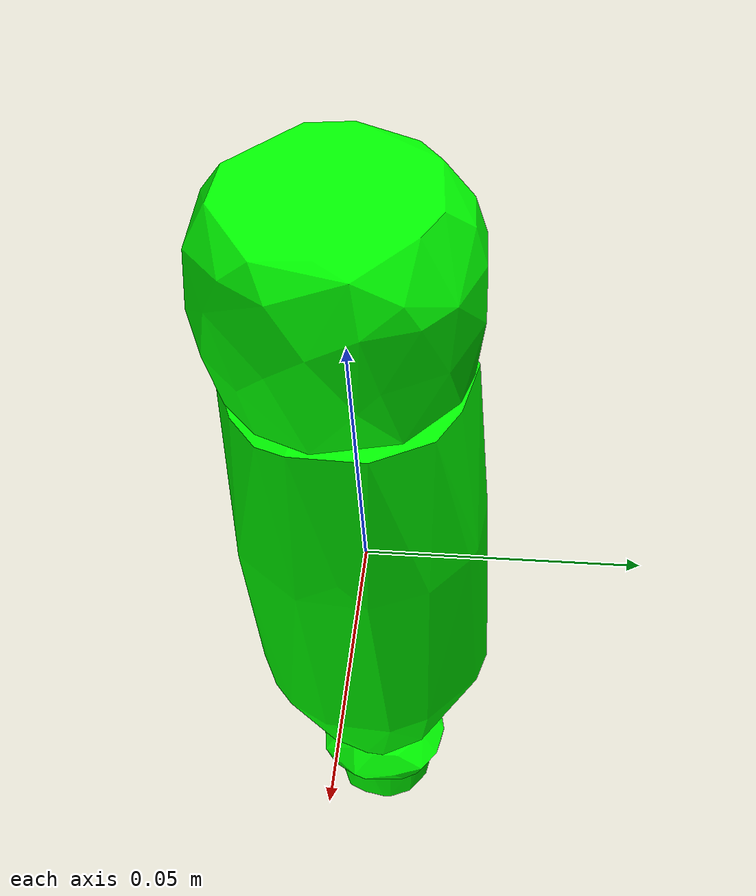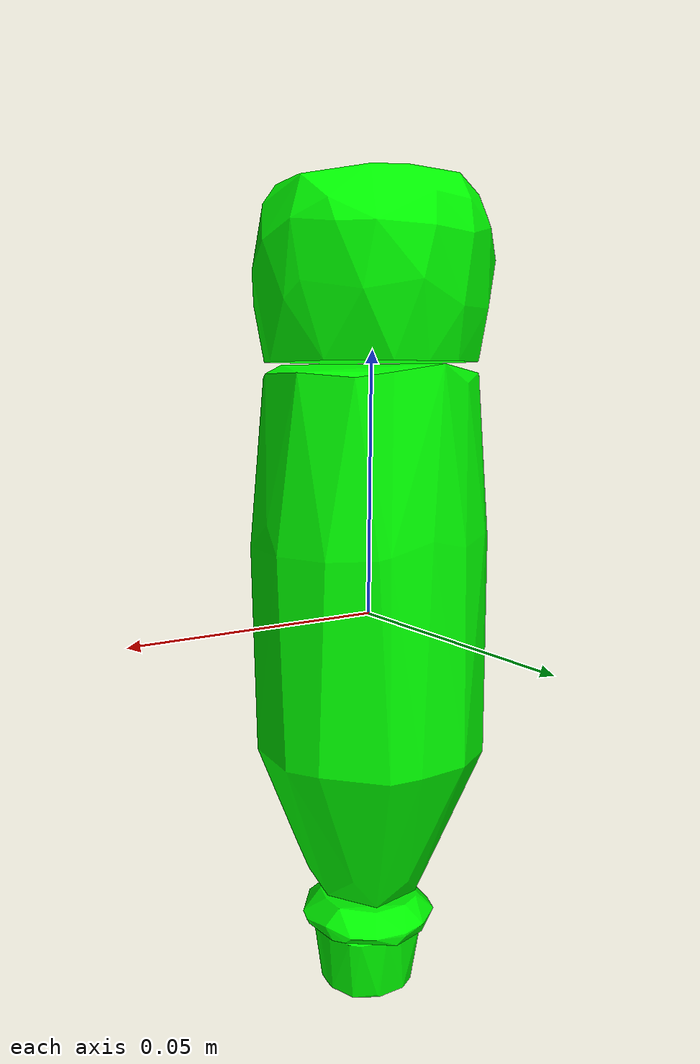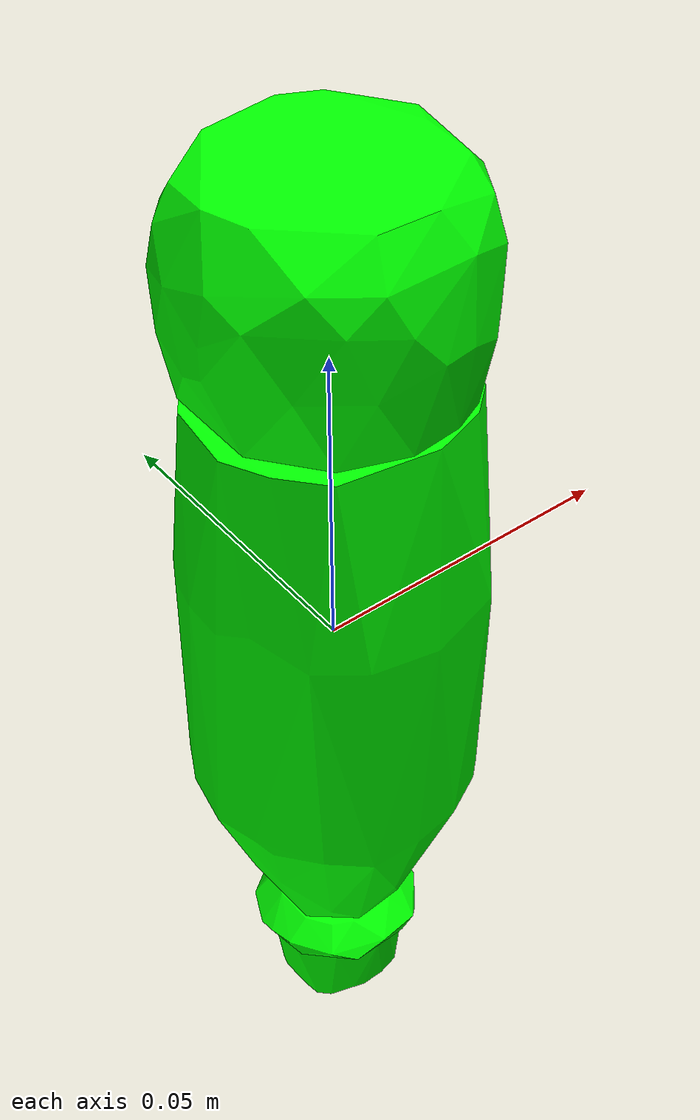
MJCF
<mujoco model="CokePlasticSmallGrasp">
  <asset>
    <mesh file="meshes/CokePlasticSmallGrasp/CokePlasticSmallGrasp_0.stl" name="CokePlasticSmallGrasp_0"/>
    <mesh file="meshes/CokePlasticSmallGrasp/CokePlasticSmallGrasp_1.stl" name="CokePlasticSmallGrasp_1"/>
    <mesh file="meshes/CokePlasticSmallGrasp/CokePlasticSmallGrasp_2.stl" name="CokePlasticSmallGrasp_2"/>
    <mesh file="meshes/CokePlasticSmallGrasp/CokePlasticSmallGrasp_3.stl" name="CokePlasticSmallGrasp_3"/>
  </asset>
  <worldbody>
    <body>
      <body name="collision">
        <geom condim="4" density="100" friction="1.5 0.3 0.1" group="1" mesh="CokePlasticSmallGrasp_0" pos="0 0 0" rgba="0 1 0 1" solimp="0.998 0.998 0.001" solref="0.002 1" type="mesh"/>
        <geom condim="4" density="100" friction="1.5 0.3 0.1" group="1" mesh="CokePlasticSmallGrasp_1" pos="0 0 0" rgba="0 1 0 1" solimp="0.998 0.998 0.001" solref="0.002 1" type="mesh"/>
        <geom condim="4" density="100" friction="1.5 0.3 0.1" group="1" mesh="CokePlasticSmallGrasp_2" pos="0 0 0" rgba="0 1 0 1" solimp="0.998 0.998 0.001" solref="0.002 1" type="mesh"/>
        <geom condim="4" density="100" friction="1.5 0.3 0.1" group="1" mesh="CokePlasticSmallGrasp_3" pos="0 0 0" rgba="0 1 0 1" solimp="0.998 0.998 0.001" solref="0.002 1" type="mesh"/>
      </body>
      <body name="visual">
        <geom conaffinity="0" contype="0" group="0" mass="0.0001" mesh="CokePlasticSmallGrasp_0" pos="0 0 0" rgba="0 1 0 1" type="mesh"/>
        <geom conaffinity="0" contype="0" group="0" mass="0.0001" mesh="CokePlasticSmallGrasp_1" pos="0 0 0" rgba="0 1 0 1" type="mesh"/>
        <geom conaffinity="0" contype="0" group="0" mass="0.0001" mesh="CokePlasticSmallGrasp_2" pos="0 0 0" rgba="0 1 0 1" type="mesh"/>
        <geom conaffinity="0" contype="0" group="0" mass="0.0001" mesh="CokePlasticSmallGrasp_3" pos="0 0 0" rgba="0 1 0 1" type="mesh"/>
      </body>
      <site name="bottom_site" pos="0 0 -0.06" rgba="0 0 0 0" size="0.005"/>
      <site name="top_site" pos="0 0 0.04" rgba="0 0 0 0" size="0.005"/>
      <site name="horizontal_radius_site" pos="0.025 0.025 0" rgba="0 0 0 0" size="0.005"/>
    </body>
  </worldbody>
</mujoco>
